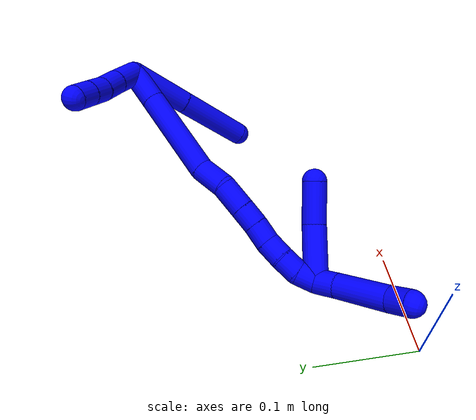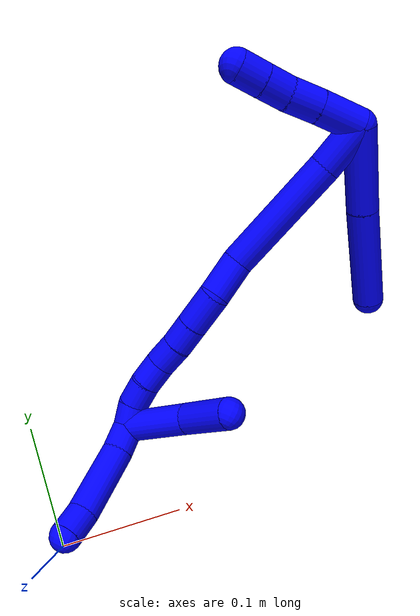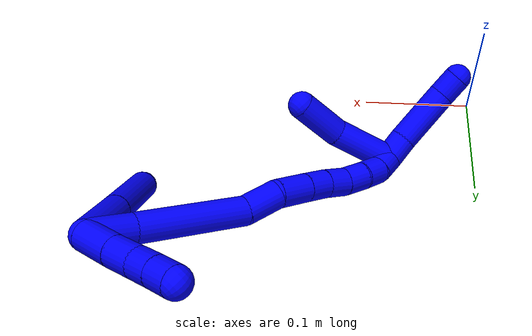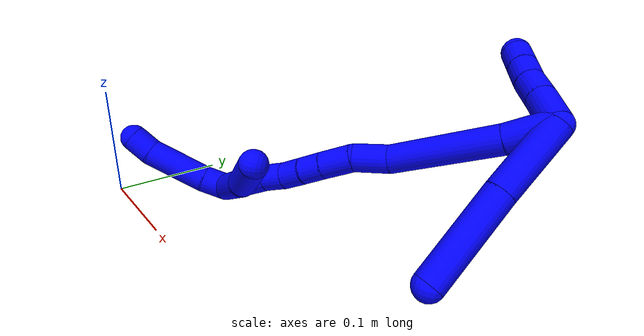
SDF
<sdf version="1.7">
 <world name="default">
  <model name="1">
   <static>0</static>
   <link name="1">
    <collision name="collision-cylinder-e_1_2_8">
     <pose>-0.008833 0.027546 -0.016125 -2.10041 -0.269965 0.465165</pose>
     <geometry><cylinder><radius>0.0125</radius><length>0.066236</length></cylinder></geometry>
     <surface>
      <friction><ode><mu>1.16</mu><mu2>1.16</mu2><slip1>0</slip1><slip2>0</slip2></ode></friction>
      <contact><ode><kp>1e+06</kp><kd>1</kd><max_vel>0</max_vel><min_depth>0.001</min_depth></ode></contact>
     </surface>
    </collision>
    <visual name="visual-cylinder-e_1_2_8">
     <pose>-0.008833 0.027546 -0.016125 -2.10041 -0.269965 0.465165</pose>
     <geometry><cylinder><radius>0.0125</radius><length>0.066236</length></cylinder></geometry>
     <material><ambient>0 0 1 1</ambient></material>
    </visual>
    <collision name="collision-cylinder-e_2_8_6">
     <pose>-0.028597 0.090712 -0.051375 -2.06353 -0.264087 0.437025</pose>
     <geometry><cylinder><radius>0.0125</radius><length>0.083764</length></cylinder></geometry>
     <surface>
      <friction><ode><mu>1.16</mu><mu2>1.16</mu2><slip1>0</slip1><slip2>0</slip2></ode></friction>
      <contact><ode><kp>1e+06</kp><kd>1</kd><max_vel>0</max_vel><min_depth>0.001</min_depth></ode></contact>
     </surface>
    </collision>
    <visual name="visual-cylinder-e_2_8_6">
     <pose>-0.028597 0.090712 -0.051375 -2.06353 -0.264087 0.437025</pose>
     <geometry><cylinder><radius>0.0125</radius><length>0.083764</length></cylinder></geometry>
     <material><ambient>0 0 1 1</ambient></material>
    </visual>
    <collision name="collision-cylinder-e_1_2_9">
     <pose>-0.007032 -0.015143 -0.003004 1.76665 -0.427419 -0.5168</pose>
     <geometry><cylinder><radius>0.0125</radius><length>0.033928</length></cylinder></geometry>
     <surface>
      <friction><ode><mu>1.16</mu><mu2>1.16</mu2><slip1>0</slip1><slip2>0</slip2></ode></friction>
      <contact><ode><kp>1e+06</kp><kd>1</kd><max_vel>0</max_vel><min_depth>0.001</min_depth></ode></contact>
     </surface>
    </collision>
    <visual name="visual-cylinder-e_1_2_9">
     <pose>-0.007032 -0.015143 -0.003004 1.76665 -0.427419 -0.5168</pose>
     <geometry><cylinder><radius>0.0125</radius><length>0.033928</length></cylinder></geometry>
     <material><ambient>0 0 1 1</ambient></material>
    </visual>
    <collision name="collision-cylinder-e_2_9_10">
     <pose>-0.019188 -0.041189 -0.008684 1.81145 -0.428139 -0.540825</pose>
     <geometry><cylinder><radius>0.0125</radius><length>0.024682</length></cylinder></geometry>
     <surface>
      <friction><ode><mu>1.16</mu><mu2>1.16</mu2><slip1>0</slip1><slip2>0</slip2></ode></friction>
      <contact><ode><kp>1e+06</kp><kd>1</kd><max_vel>0</max_vel><min_depth>0.001</min_depth></ode></contact>
     </surface>
    </collision>
    <visual name="visual-cylinder-e_2_9_10">
     <pose>-0.019188 -0.041189 -0.008684 1.81145 -0.428139 -0.540825</pose>
     <geometry><cylinder><radius>0.0125</radius><length>0.024682</length></cylinder></geometry>
     <material><ambient>0 0 1 1</ambient></material>
    </visual>
    <collision name="collision-cylinder-e_3_10_11">
     <pose>-0.027587 -0.06165 -0.013245 1.76551 -0.324405 -0.392989</pose>
     <geometry><cylinder><radius>0.0125</radius><length>0.020555</length></cylinder></geometry>
     <surface>
      <friction><ode><mu>1.16</mu><mu2>1.16</mu2><slip1>0</slip1><slip2>0</slip2></ode></friction>
      <contact><ode><kp>1e+06</kp><kd>1</kd><max_vel>0</max_vel><min_depth>0.001</min_depth></ode></contact>
     </surface>
    </collision>
    <visual name="visual-cylinder-e_3_10_11">
     <pose>-0.027587 -0.06165 -0.013245 1.76551 -0.324405 -0.392989</pose>
     <geometry><cylinder><radius>0.0125</radius><length>0.020555</length></cylinder></geometry>
     <material><ambient>0 0 1 1</ambient></material>
    </visual>
    <collision name="collision-cylinder-e_4_11_5">
     <pose>-0.034282 -0.080893 -0.01687 1.74857 -0.334395 -0.398249</pose>
     <geometry><cylinder><radius>0.0125</radius><length>0.020835</length></cylinder></geometry>
     <surface>
      <friction><ode><mu>1.16</mu><mu2>1.16</mu2><slip1>0</slip1><slip2>0</slip2></ode></friction>
      <contact><ode><kp>1e+06</kp><kd>1</kd><max_vel>0</max_vel><min_depth>0.001</min_depth></ode></contact>
     </surface>
    </collision>
    <visual name="visual-cylinder-e_4_11_5">
     <pose>-0.034282 -0.080893 -0.01687 1.74857 -0.334395 -0.398249</pose>
     <geometry><cylinder><radius>0.0125</radius><length>0.020835</length></cylinder></geometry>
     <material><ambient>0 0 1 1</ambient></material>
    </visual>
    <collision name="collision-cylinder-e_1_2_12">
     <pose>-0.011739 0.003357 -0.014537 -2.91464 -0.666651 2.50562</pose>
     <geometry><cylinder><radius>0.0125</radius><length>0.037967</length></cylinder></geometry>
     <surface>
      <friction><ode><mu>1.16</mu><mu2>1.16</mu2><slip1>0</slip1><slip2>0</slip2></ode></friction>
      <contact><ode><kp>1e+06</kp><kd>1</kd><max_vel>0</max_vel><min_depth>0.001</min_depth></ode></contact>
     </surface>
    </collision>
    <visual name="visual-cylinder-e_1_2_12">
     <pose>-0.011739 0.003357 -0.014537 -2.91464 -0.666651 2.50562</pose>
     <geometry><cylinder><radius>0.0125</radius><length>0.037967</length></cylinder></geometry>
     <material><ambient>0 0 1 1</ambient></material>
    </visual>
    <collision name="collision-cylinder-e_2_12_13">
     <pose>-0.051802 0.011009 -0.067551 -3.03043 -0.631612 2.80426</pose>
     <geometry><cylinder><radius>0.0125</radius><length>0.095943</length></cylinder></geometry>
     <surface>
      <friction><ode><mu>1.16</mu><mu2>1.16</mu2><slip1>0</slip1><slip2>0</slip2></ode></friction>
      <contact><ode><kp>1e+06</kp><kd>1</kd><max_vel>0</max_vel><min_depth>0.001</min_depth></ode></contact>
     </surface>
    </collision>
    <visual name="visual-cylinder-e_2_12_13">
     <pose>-0.051802 0.011009 -0.067551 -3.03043 -0.631612 2.80426</pose>
     <geometry><cylinder><radius>0.0125</radius><length>0.095943</length></cylinder></geometry>
     <material><ambient>0 0 1 1</ambient></material>
    </visual>
    <collision name="collision-cylinder-e_3_13_14">
     <pose>-0.084974 0.01592 -0.121149 -3.10087 -0.309965 2.88238</pose>
     <geometry><cylinder><radius>0.0125</radius><length>0.03178</length></cylinder></geometry>
     <surface>
      <friction><ode><mu>1.16</mu><mu2>1.16</mu2><slip1>0</slip1><slip2>0</slip2></ode></friction>
      <contact><ode><kp>1e+06</kp><kd>1</kd><max_vel>0</max_vel><min_depth>0.001</min_depth></ode></contact>
     </surface>
    </collision>
    <visual name="visual-cylinder-e_3_13_14">
     <pose>-0.084974 0.01592 -0.121149 -3.10087 -0.309965 2.88238</pose>
     <geometry><cylinder><radius>0.0125</radius><length>0.03178</length></cylinder></geometry>
     <material><ambient>0 0 1 1</ambient></material>
    </visual>
    <collision name="collision-cylinder-e_4_14_15">
     <pose>-0.098173 0.01934 -0.148506 -2.91633 -0.587065 2.42543</pose>
     <geometry><cylinder><radius>0.0125</radius><length>0.030156</length></cylinder></geometry>
     <surface>
      <friction><ode><mu>1.16</mu><mu2>1.16</mu2><slip1>0</slip1><slip2>0</slip2></ode></friction>
      <contact><ode><kp>1e+06</kp><kd>1</kd><max_vel>0</max_vel><min_depth>0.001</min_depth></ode></contact>
     </surface>
    </collision>
    <visual name="visual-cylinder-e_4_14_15">
     <pose>-0.098173 0.01934 -0.148506 -2.91633 -0.587065 2.42543</pose>
     <geometry><cylinder><radius>0.0125</radius><length>0.030156</length></cylinder></geometry>
     <material><ambient>0 0 1 1</ambient></material>
    </visual>
    <collision name="collision-cylinder-e_5_15_16">
     <pose>-0.11258 0.02423 -0.169338 -2.90358 -0.600293 2.40424</pose>
     <geometry><cylinder><radius>0.0125</radius><length>0.021439</length></cylinder></geometry>
     <surface>
      <friction><ode><mu>1.16</mu><mu2>1.16</mu2><slip1>0</slip1><slip2>0</slip2></ode></friction>
      <contact><ode><kp>1e+06</kp><kd>1</kd><max_vel>0</max_vel><min_depth>0.001</min_depth></ode></contact>
     </surface>
    </collision>
    <visual name="visual-cylinder-e_5_15_16">
     <pose>-0.11258 0.02423 -0.169338 -2.90358 -0.600293 2.40424</pose>
     <geometry><cylinder><radius>0.0125</radius><length>0.021439</length></cylinder></geometry>
     <material><ambient>0 0 1 1</ambient></material>
    </visual>
    <collision name="collision-cylinder-e_6_16_17">
     <pose>-0.125271 0.02779 -0.186114 -2.96315 -0.673805 2.64148</pose>
     <geometry><cylinder><radius>0.0125</radius><length>0.021271</length></cylinder></geometry>
     <surface>
      <friction><ode><mu>1.16</mu><mu2>1.16</mu2><slip1>0</slip1><slip2>0</slip2></ode></friction>
      <contact><ode><kp>1e+06</kp><kd>1</kd><max_vel>0</max_vel><min_depth>0.001</min_depth></ode></contact>
     </surface>
    </collision>
    <visual name="visual-cylinder-e_6_16_17">
     <pose>-0.125271 0.02779 -0.186114 -2.96315 -0.673805 2.64148</pose>
     <geometry><cylinder><radius>0.0125</radius><length>0.021271</length></cylinder></geometry>
     <material><ambient>0 0 1 1</ambient></material>
    </visual>
    <collision name="collision-cylinder-e_7_17_18">
     <pose>-0.13688 0.030383 -0.203477 -3.02056 -0.493161 2.66914</pose>
     <geometry><cylinder><radius>0.0125</radius><length>0.021008</length></cylinder></geometry>
     <surface>
      <friction><ode><mu>1.16</mu><mu2>1.16</mu2><slip1>0</slip1><slip2>0</slip2></ode></friction>
      <contact><ode><kp>1e+06</kp><kd>1</kd><max_vel>0</max_vel><min_depth>0.001</min_depth></ode></contact>
     </surface>
    </collision>
    <visual name="visual-cylinder-e_7_17_18">
     <pose>-0.13688 0.030383 -0.203477 -3.02056 -0.493161 2.66914</pose>
     <geometry><cylinder><radius>0.0125</radius><length>0.021008</length></cylinder></geometry>
     <material><ambient>0 0 1 1</ambient></material>
    </visual>
    <collision name="collision-cylinder-e_8_18_19">
     <pose>-0.146541 0.034071 -0.221366 -2.8543 -0.476844 2.06793</pose>
     <geometry><cylinder><radius>0.0125</radius><length>0.02043</length></cylinder></geometry>
     <surface>
      <friction><ode><mu>1.16</mu><mu2>1.16</mu2><slip1>0</slip1><slip2>0</slip2></ode></friction>
      <contact><ode><kp>1e+06</kp><kd>1</kd><max_vel>0</max_vel><min_depth>0.001</min_depth></ode></contact>
     </surface>
    </collision>
    <visual name="visual-cylinder-e_8_18_19">
     <pose>-0.146541 0.034071 -0.221366 -2.8543 -0.476844 2.06793</pose>
     <geometry><cylinder><radius>0.0125</radius><length>0.02043</length></cylinder></geometry>
     <material><ambient>0 0 1 1</ambient></material>
    </visual>
    <collision name="collision-cylinder-e_9_19_1">
     <pose>-0.152824 0.040521 -0.239151 -2.73802 -0.160073 0.747321</pose>
     <geometry><cylinder><radius>0.0125</radius><length>0.020005</length></cylinder></geometry>
     <surface>
      <friction><ode><mu>1.16</mu><mu2>1.16</mu2><slip1>0</slip1><slip2>0</slip2></ode></friction>
      <contact><ode><kp>1e+06</kp><kd>1</kd><max_vel>0</max_vel><min_depth>0.001</min_depth></ode></contact>
     </surface>
    </collision>
    <visual name="visual-cylinder-e_9_19_1">
     <pose>-0.152824 0.040521 -0.239151 -2.73802 -0.160073 0.747321</pose>
     <geometry><cylinder><radius>0.0125</radius><length>0.020005</length></cylinder></geometry>
     <material><ambient>0 0 1 1</ambient></material>
    </visual>
    <collision name="collision-cylinder-e_1_1_20">
     <pose>-0.152468 0.04357 -0.259515 3.0683 0.170718 2.33196</pose>
     <geometry><cylinder><radius>0.0125</radius><length>0.022961</length></cylinder></geometry>
     <surface>
      <friction><ode><mu>1.16</mu><mu2>1.16</mu2><slip1>0</slip1><slip2>0</slip2></ode></friction>
      <contact><ode><kp>1e+06</kp><kd>1</kd><max_vel>0</max_vel><min_depth>0.001</min_depth></ode></contact>
     </surface>
    </collision>
    <visual name="visual-cylinder-e_1_1_20">
     <pose>-0.152468 0.04357 -0.259515 3.0683 0.170718 2.33196</pose>
     <geometry><cylinder><radius>0.0125</radius><length>0.022961</length></cylinder></geometry>
     <material><ambient>0 0 1 1</ambient></material>
    </visual>
    <collision name="collision-cylinder-e_2_20_21">
     <pose>-0.145607 0.037311 -0.297466 2.94069 0.178509 1.4522</pose>
     <geometry><cylinder><radius>0.0125</radius><length>0.055308</length></cylinder></geometry>
     <surface>
      <friction><ode><mu>1.16</mu><mu2>1.16</mu2><slip1>0</slip1><slip2>0</slip2></ode></friction>
      <contact><ode><kp>1e+06</kp><kd>1</kd><max_vel>0</max_vel><min_depth>0.001</min_depth></ode></contact>
     </surface>
    </collision>
    <visual name="visual-cylinder-e_2_20_21">
     <pose>-0.145607 0.037311 -0.297466 2.94069 0.178509 1.4522</pose>
     <geometry><cylinder><radius>0.0125</radius><length>0.055308</length></cylinder></geometry>
     <material><ambient>0 0 1 1</ambient></material>
    </visual>
    <collision name="collision-cylinder-e_3_21_4">
     <pose>-0.137936 0.027649 -0.333752 2.72719 0.256956 1.10209</pose>
     <geometry><cylinder><radius>0.0125</radius><length>0.021731</length></cylinder></geometry>
     <surface>
      <friction><ode><mu>1.16</mu><mu2>1.16</mu2><slip1>0</slip1><slip2>0</slip2></ode></friction>
      <contact><ode><kp>1e+06</kp><kd>1</kd><max_vel>0</max_vel><min_depth>0.001</min_depth></ode></contact>
     </surface>
    </collision>
    <visual name="visual-cylinder-e_3_21_4">
     <pose>-0.137936 0.027649 -0.333752 2.72719 0.256956 1.10209</pose>
     <geometry><cylinder><radius>0.0125</radius><length>0.021731</length></cylinder></geometry>
     <material><ambient>0 0 1 1</ambient></material>
    </visual>
    <collision name="collision-cylinder-e_1_1_22">
     <pose>-0.12942 0.050502 -0.237286 -0.508647 1.1061 -0.318228</pose>
     <geometry><cylinder><radius>0.0125</radius><length>0.055927</length></cylinder></geometry>
     <surface>
      <friction><ode><mu>1.16</mu><mu2>1.16</mu2><slip1>0</slip1><slip2>0</slip2></ode></friction>
      <contact><ode><kp>1e+06</kp><kd>1</kd><max_vel>0</max_vel><min_depth>0.001</min_depth></ode></contact>
     </surface>
    </collision>
    <visual name="visual-cylinder-e_1_1_22">
     <pose>-0.12942 0.050502 -0.237286 -0.508647 1.1061 -0.318228</pose>
     <geometry><cylinder><radius>0.0125</radius><length>0.055927</length></cylinder></geometry>
     <material><ambient>0 0 1 1</ambient></material>
    </visual>
    <collision name="collision-cylinder-e_2_22_3">
     <pose>-0.083175 0.056143 -0.220513 0.079059 1.30226 0.060255</pose>
     <geometry><cylinder><radius>0.0125</radius><length>0.044073</length></cylinder></geometry>
     <surface>
      <friction><ode><mu>1.16</mu><mu2>1.16</mu2><slip1>0</slip1><slip2>0</slip2></ode></friction>
      <contact><ode><kp>1e+06</kp><kd>1</kd><max_vel>0</max_vel><min_depth>0.001</min_depth></ode></contact>
     </surface>
    </collision>
    <visual name="visual-cylinder-e_2_22_3">
     <pose>-0.083175 0.056143 -0.220513 0.079059 1.30226 0.060255</pose>
     <geometry><cylinder><radius>0.0125</radius><length>0.044073</length></cylinder></geometry>
     <material><ambient>0 0 1 1</ambient></material>
    </visual>
    <collision name="collision-sphere-3">
     <pose>-0.061929 0.055681 -0.214684 0 -0 0</pose>
     <geometry><sphere><radius>0.0125</radius></sphere></geometry>
     <surface>
      <friction><ode><mu>1.16</mu><mu2>1.16</mu2><slip1>0</slip1><slip2>0</slip2></ode></friction>
      <contact><ode><kp>1e+06</kp><kd>1</kd><max_vel>0</max_vel><min_depth>0.001</min_depth></ode></contact>
     </surface>
    </collision>
    <visual name="visual-sphere-3">
     <pose>-0.061929 0.055681 -0.214684 0 -0 0</pose>
     <geometry><sphere><radius>0.0125</radius></sphere></geometry>
     <material><ambient>0 0 1 1</ambient></material>
    </visual>
    <collision name="collision-sphere-22">
     <pose>-0.104422 0.056605 -0.226341 0 -0 0</pose>
     <geometry><sphere><radius>0.0125</radius></sphere></geometry>
     <surface>
      <friction><ode><mu>1.16</mu><mu2>1.16</mu2><slip1>0</slip1><slip2>0</slip2></ode></friction>
      <contact><ode><kp>1e+06</kp><kd>1</kd><max_vel>0</max_vel><min_depth>0.001</min_depth></ode></contact>
     </surface>
    </collision>
    <visual name="visual-sphere-22">
     <pose>-0.104422 0.056605 -0.226341 0 -0 0</pose>
     <geometry><sphere><radius>0.0125</radius></sphere></geometry>
     <material><ambient>0 0 1 1</ambient></material>
    </visual>
    <collision name="collision-sphere-4">
     <pose>-0.135174 0.023418 -0.343371 0 -0 0</pose>
     <geometry><sphere><radius>0.0125</radius></sphere></geometry>
     <surface>
      <friction><ode><mu>1.16</mu><mu2>1.16</mu2><slip1>0</slip1><slip2>0</slip2></ode></friction>
      <contact><ode><kp>1e+06</kp><kd>1</kd><max_vel>0</max_vel><min_depth>0.001</min_depth></ode></contact>
     </surface>
    </collision>
    <visual name="visual-sphere-4">
     <pose>-0.135174 0.023418 -0.343371 0 -0 0</pose>
     <geometry><sphere><radius>0.0125</radius></sphere></geometry>
     <material><ambient>0 0 1 1</ambient></material>
    </visual>
    <collision name="collision-sphere-21">
     <pose>-0.140697 0.03188 -0.324133 0 -0 0</pose>
     <geometry><sphere><radius>0.0125</radius></sphere></geometry>
     <surface>
      <friction><ode><mu>1.16</mu><mu2>1.16</mu2><slip1>0</slip1><slip2>0</slip2></ode></friction>
      <contact><ode><kp>1e+06</kp><kd>1</kd><max_vel>0</max_vel><min_depth>0.001</min_depth></ode></contact>
     </surface>
    </collision>
    <visual name="visual-sphere-21">
     <pose>-0.140697 0.03188 -0.324133 0 -0 0</pose>
     <geometry><sphere><radius>0.0125</radius></sphere></geometry>
     <material><ambient>0 0 1 1</ambient></material>
    </visual>
    <collision name="collision-sphere-20">
     <pose>-0.150518 0.042742 -0.270799 0 -0 0</pose>
     <geometry><sphere><radius>0.0125</radius></sphere></geometry>
     <surface>
      <friction><ode><mu>1.16</mu><mu2>1.16</mu2><slip1>0</slip1><slip2>0</slip2></ode></friction>
      <contact><ode><kp>1e+06</kp><kd>1</kd><max_vel>0</max_vel><min_depth>0.001</min_depth></ode></contact>
     </surface>
    </collision>
    <visual name="visual-sphere-20">
     <pose>-0.150518 0.042742 -0.270799 0 -0 0</pose>
     <geometry><sphere><radius>0.0125</radius></sphere></geometry>
     <material><ambient>0 0 1 1</ambient></material>
    </visual>
    <collision name="collision-sphere-11">
     <pose>-0.030863 -0.071207 -0.01513 0 -0 0</pose>
     <geometry><sphere><radius>0.0125</radius></sphere></geometry>
     <surface>
      <friction><ode><mu>1.16</mu><mu2>1.16</mu2><slip1>0</slip1><slip2>0</slip2></ode></friction>
      <contact><ode><kp>1e+06</kp><kd>1</kd><max_vel>0</max_vel><min_depth>0.001</min_depth></ode></contact>
     </surface>
    </collision>
    <visual name="visual-sphere-11">
     <pose>-0.030863 -0.071207 -0.01513 0 -0 0</pose>
     <geometry><sphere><radius>0.0125</radius></sphere></geometry>
     <material><ambient>0 0 1 1</ambient></material>
    </visual>
    <collision name="collision-sphere-10">
     <pose>-0.024311 -0.052093 -0.01136 0 -0 0</pose>
     <geometry><sphere><radius>0.0125</radius></sphere></geometry>
     <surface>
      <friction><ode><mu>1.16</mu><mu2>1.16</mu2><slip1>0</slip1><slip2>0</slip2></ode></friction>
      <contact><ode><kp>1e+06</kp><kd>1</kd><max_vel>0</max_vel><min_depth>0.001</min_depth></ode></contact>
     </surface>
    </collision>
    <visual name="visual-sphere-10">
     <pose>-0.024311 -0.052093 -0.01136 0 -0 0</pose>
     <geometry><sphere><radius>0.0125</radius></sphere></geometry>
     <material><ambient>0 0 1 1</ambient></material>
    </visual>
    <collision name="collision-sphere-6">
     <pose>-0.03953 0.126333 -0.0705 0 -0 0</pose>
     <geometry><sphere><radius>0.0125</radius></sphere></geometry>
     <surface>
      <friction><ode><mu>1.16</mu><mu2>1.16</mu2><slip1>0</slip1><slip2>0</slip2></ode></friction>
      <contact><ode><kp>1e+06</kp><kd>1</kd><max_vel>0</max_vel><min_depth>0.001</min_depth></ode></contact>
     </surface>
    </collision>
    <visual name="visual-sphere-6">
     <pose>-0.03953 0.126333 -0.0705 0 -0 0</pose>
     <geometry><sphere><radius>0.0125</radius></sphere></geometry>
     <material><ambient>0 0 1 1</ambient></material>
    </visual>
    <collision name="collision-sphere-9">
     <pose>-0.014064 -0.030285 -0.006008 0 -0 0</pose>
     <geometry><sphere><radius>0.0125</radius></sphere></geometry>
     <surface>
      <friction><ode><mu>1.16</mu><mu2>1.16</mu2><slip1>0</slip1><slip2>0</slip2></ode></friction>
      <contact><ode><kp>1e+06</kp><kd>1</kd><max_vel>0</max_vel><min_depth>0.001</min_depth></ode></contact>
     </surface>
    </collision>
    <visual name="visual-sphere-9">
     <pose>-0.014064 -0.030285 -0.006008 0 -0 0</pose>
     <geometry><sphere><radius>0.0125</radius></sphere></geometry>
     <material><ambient>0 0 1 1</ambient></material>
    </visual>
    <collision name="collision-sphere-2">
     <geometry><sphere><radius>0.0125</radius></sphere></geometry>
     <surface>
      <friction><ode><mu>1.16</mu><mu2>1.16</mu2><slip1>0</slip1><slip2>0</slip2></ode></friction>
      <contact><ode><kp>1e+06</kp><kd>1</kd><max_vel>0</max_vel><min_depth>0.001</min_depth></ode></contact>
     </surface>
    </collision>
    <visual name="visual-sphere-2">
     <geometry><sphere><radius>0.0125</radius></sphere></geometry>
     <material><ambient>0 0 1 1</ambient></material>
    </visual>
    <collision name="collision-sphere-19">
     <pose>-0.15123 0.036643 -0.230069 0 -0 0</pose>
     <geometry><sphere><radius>0.0125</radius></sphere></geometry>
     <surface>
      <friction><ode><mu>1.16</mu><mu2>1.16</mu2><slip1>0</slip1><slip2>0</slip2></ode></friction>
      <contact><ode><kp>1e+06</kp><kd>1</kd><max_vel>0</max_vel><min_depth>0.001</min_depth></ode></contact>
     </surface>
    </collision>
    <visual name="visual-sphere-19">
     <pose>-0.15123 0.036643 -0.230069 0 -0 0</pose>
     <geometry><sphere><radius>0.0125</radius></sphere></geometry>
     <material><ambient>0 0 1 1</ambient></material>
    </visual>
    <collision name="collision-sphere-8">
     <pose>-0.017665 0.055092 -0.032251 0 -0 0</pose>
     <geometry><sphere><radius>0.0125</radius></sphere></geometry>
     <surface>
      <friction><ode><mu>1.16</mu><mu2>1.16</mu2><slip1>0</slip1><slip2>0</slip2></ode></friction>
      <contact><ode><kp>1e+06</kp><kd>1</kd><max_vel>0</max_vel><min_depth>0.001</min_depth></ode></contact>
     </surface>
    </collision>
    <visual name="visual-sphere-8">
     <pose>-0.017665 0.055092 -0.032251 0 -0 0</pose>
     <geometry><sphere><radius>0.0125</radius></sphere></geometry>
     <material><ambient>0 0 1 1</ambient></material>
    </visual>
    <collision name="collision-sphere-5">
     <pose>-0.037701 -0.090578 -0.01861 0 -0 0</pose>
     <geometry><sphere><radius>0.0125</radius></sphere></geometry>
     <surface>
      <friction><ode><mu>1.16</mu><mu2>1.16</mu2><slip1>0</slip1><slip2>0</slip2></ode></friction>
      <contact><ode><kp>1e+06</kp><kd>1</kd><max_vel>0</max_vel><min_depth>0.001</min_depth></ode></contact>
     </surface>
    </collision>
    <visual name="visual-sphere-5">
     <pose>-0.037701 -0.090578 -0.01861 0 -0 0</pose>
     <geometry><sphere><radius>0.0125</radius></sphere></geometry>
     <material><ambient>0 0 1 1</ambient></material>
    </visual>
    <collision name="collision-sphere-12">
     <pose>-0.023477 0.006714 -0.029073 0 -0 0</pose>
     <geometry><sphere><radius>0.0125</radius></sphere></geometry>
     <surface>
      <friction><ode><mu>1.16</mu><mu2>1.16</mu2><slip1>0</slip1><slip2>0</slip2></ode></friction>
      <contact><ode><kp>1e+06</kp><kd>1</kd><max_vel>0</max_vel><min_depth>0.001</min_depth></ode></contact>
     </surface>
    </collision>
    <visual name="visual-sphere-12">
     <pose>-0.023477 0.006714 -0.029073 0 -0 0</pose>
     <geometry><sphere><radius>0.0125</radius></sphere></geometry>
     <material><ambient>0 0 1 1</ambient></material>
    </visual>
    <collision name="collision-sphere-13">
     <pose>-0.080127 0.015304 -0.106029 0 -0 0</pose>
     <geometry><sphere><radius>0.0125</radius></sphere></geometry>
     <surface>
      <friction><ode><mu>1.16</mu><mu2>1.16</mu2><slip1>0</slip1><slip2>0</slip2></ode></friction>
      <contact><ode><kp>1e+06</kp><kd>1</kd><max_vel>0</max_vel><min_depth>0.001</min_depth></ode></contact>
     </surface>
    </collision>
    <visual name="visual-sphere-13">
     <pose>-0.080127 0.015304 -0.106029 0 -0 0</pose>
     <geometry><sphere><radius>0.0125</radius></sphere></geometry>
     <material><ambient>0 0 1 1</ambient></material>
    </visual>
    <collision name="collision-sphere-14">
     <pose>-0.089821 0.016536 -0.13627 0 -0 0</pose>
     <geometry><sphere><radius>0.0125</radius></sphere></geometry>
     <surface>
      <friction><ode><mu>1.16</mu><mu2>1.16</mu2><slip1>0</slip1><slip2>0</slip2></ode></friction>
      <contact><ode><kp>1e+06</kp><kd>1</kd><max_vel>0</max_vel><min_depth>0.001</min_depth></ode></contact>
     </surface>
    </collision>
    <visual name="visual-sphere-14">
     <pose>-0.089821 0.016536 -0.13627 0 -0 0</pose>
     <geometry><sphere><radius>0.0125</radius></sphere></geometry>
     <material><ambient>0 0 1 1</ambient></material>
    </visual>
    <collision name="collision-sphere-15">
     <pose>-0.106524 0.022144 -0.160742 0 -0 0</pose>
     <geometry><sphere><radius>0.0125</radius></sphere></geometry>
     <surface>
      <friction><ode><mu>1.16</mu><mu2>1.16</mu2><slip1>0</slip1><slip2>0</slip2></ode></friction>
      <contact><ode><kp>1e+06</kp><kd>1</kd><max_vel>0</max_vel><min_depth>0.001</min_depth></ode></contact>
     </surface>
    </collision>
    <visual name="visual-sphere-15">
     <pose>-0.106524 0.022144 -0.160742 0 -0 0</pose>
     <geometry><sphere><radius>0.0125</radius></sphere></geometry>
     <material><ambient>0 0 1 1</ambient></material>
    </visual>
    <collision name="collision-sphere-16">
     <pose>-0.118635 0.026315 -0.177934 0 -0 0</pose>
     <geometry><sphere><radius>0.0125</radius></sphere></geometry>
     <surface>
      <friction><ode><mu>1.16</mu><mu2>1.16</mu2><slip1>0</slip1><slip2>0</slip2></ode></friction>
      <contact><ode><kp>1e+06</kp><kd>1</kd><max_vel>0</max_vel><min_depth>0.001</min_depth></ode></contact>
     </surface>
    </collision>
    <visual name="visual-sphere-16">
     <pose>-0.118635 0.026315 -0.177934 0 -0 0</pose>
     <geometry><sphere><radius>0.0125</radius></sphere></geometry>
     <material><ambient>0 0 1 1</ambient></material>
    </visual>
    <collision name="collision-sphere-17">
     <pose>-0.131907 0.029265 -0.194293 0 -0 0</pose>
     <geometry><sphere><radius>0.0125</radius></sphere></geometry>
     <surface>
      <friction><ode><mu>1.16</mu><mu2>1.16</mu2><slip1>0</slip1><slip2>0</slip2></ode></friction>
      <contact><ode><kp>1e+06</kp><kd>1</kd><max_vel>0</max_vel><min_depth>0.001</min_depth></ode></contact>
     </surface>
    </collision>
    <visual name="visual-sphere-17">
     <pose>-0.131907 0.029265 -0.194293 0 -0 0</pose>
     <geometry><sphere><radius>0.0125</radius></sphere></geometry>
     <material><ambient>0 0 1 1</ambient></material>
    </visual>
    <collision name="collision-sphere-18">
     <pose>-0.141853 0.0315 -0.212662 0 -0 0</pose>
     <geometry><sphere><radius>0.0125</radius></sphere></geometry>
     <surface>
      <friction><ode><mu>1.16</mu><mu2>1.16</mu2><slip1>0</slip1><slip2>0</slip2></ode></friction>
      <contact><ode><kp>1e+06</kp><kd>1</kd><max_vel>0</max_vel><min_depth>0.001</min_depth></ode></contact>
     </surface>
    </collision>
    <visual name="visual-sphere-18">
     <pose>-0.141853 0.0315 -0.212662 0 -0 0</pose>
     <geometry><sphere><radius>0.0125</radius></sphere></geometry>
     <material><ambient>0 0 1 1</ambient></material>
    </visual>
    <collision name="collision-sphere-1">
     <pose>-0.154418 0.044399 -0.248232 0 -0 0</pose>
     <geometry><sphere><radius>0.0125</radius></sphere></geometry>
     <surface>
      <friction><ode><mu>1.16</mu><mu2>1.16</mu2><slip1>0</slip1><slip2>0</slip2></ode></friction>
      <contact><ode><kp>1e+06</kp><kd>1</kd><max_vel>0</max_vel><min_depth>0.001</min_depth></ode></contact>
     </surface>
    </collision>
    <visual name="visual-sphere-1">
     <pose>-0.154418 0.044399 -0.248232 0 -0 0</pose>
     <geometry><sphere><radius>0.0125</radius></sphere></geometry>
     <material><ambient>0 0 1 1</ambient></material>
    </visual>
    <inertial>
     <pose>-0.074015 0.025909 -0.127329 0 -0 0</pose>
     <mass>0.75</mass>
     <inertia><ixx>8.3e-05</ixx><ixy>0</ixy><ixz>0</ixz><iyy>0.00017</iyy><iyz>0</iyz><izz>-4.5e-05</izz></inertia>
    </inertial>
   </link>
   <pose>0.311622 0.234849 0.108323 -1.85806 -0.842935 -0.517126</pose>
  </model>
 </world>
</sdf>
